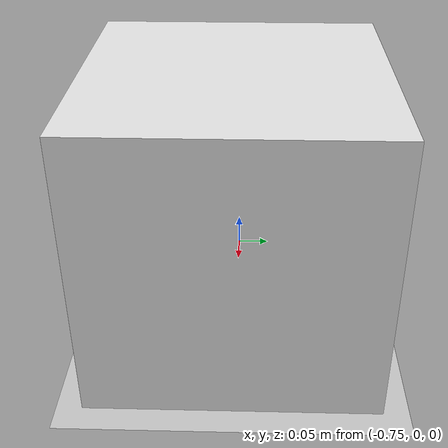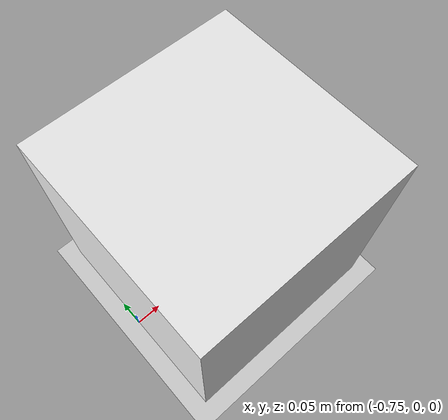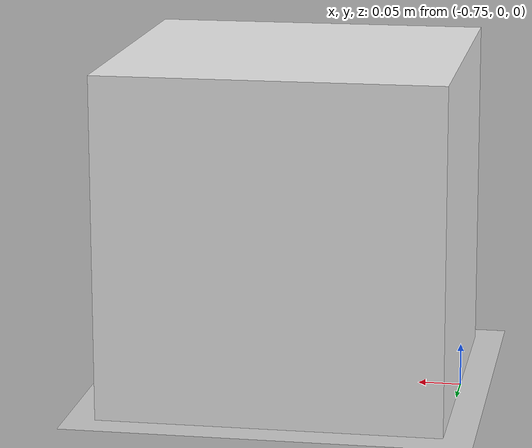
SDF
<?xml version='1.0' ?>
<sdf version='1.5'>
  <world name='empty'>
    <!-- A global light source -->
    <include>
      <uri>model://sun</uri>
    </include>

    <!-- A ground plane -->
    <include>
      <uri>model://ground_plane</uri>
    </include>

    <model name='table'>
      <static>true</static>
      <pose frame=''>-0.55 0 0.2 0 0 0</pose>
      <link name='table_box_link'>
        <inertial>
          <mass>1.0</mass>
        </inertial>
        <collision name='collision'>
          <geometry>
            <box>
              <size>0.4 0.4 0.4</size>
            </box>
          </geometry>
          <max_contacts>10</max_contacts>
          <surface>
            <contact>
              <ode/>
            </contact>
            <bounce/>
            <friction>
              <ode>
                <mu>0.6</mu>
                <mu2>0.6</mu2>
              </ode>
              <torsional>
                <ode/>
              </torsional>
            </friction>
          </surface>
        </collision>
        <visual name='visual'>
          <geometry>
            <box>
              <size>0.4 0.4 0.4</size>
            </box>
          </geometry>
          <material>
            <script>
              <name>Gazebo/White</name>
              <uri>file://media/materials/scripts/gazebo.material</uri>
            </script>
          </material>
        </visual>
        <self_collide>0</self_collide>
        <kinematic>0</kinematic>
      </link>
    </model>

  </world>
</sdf>
